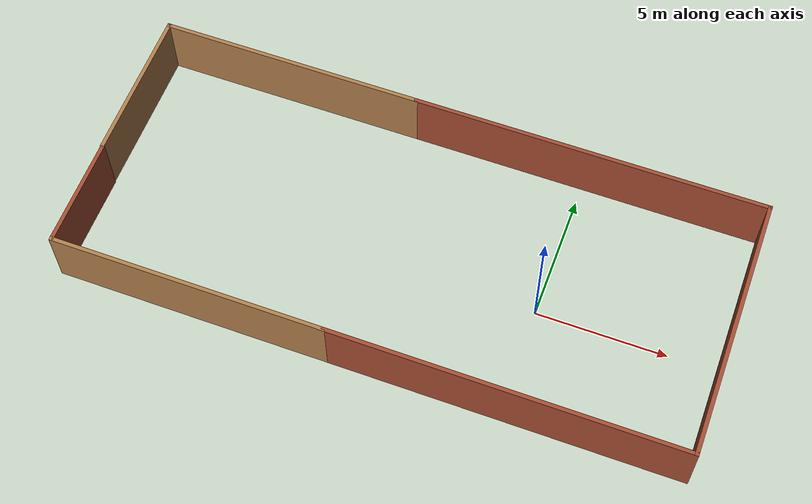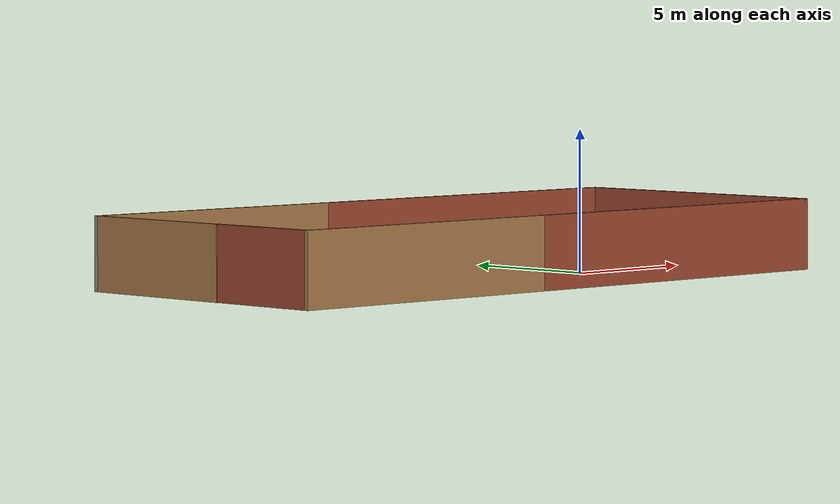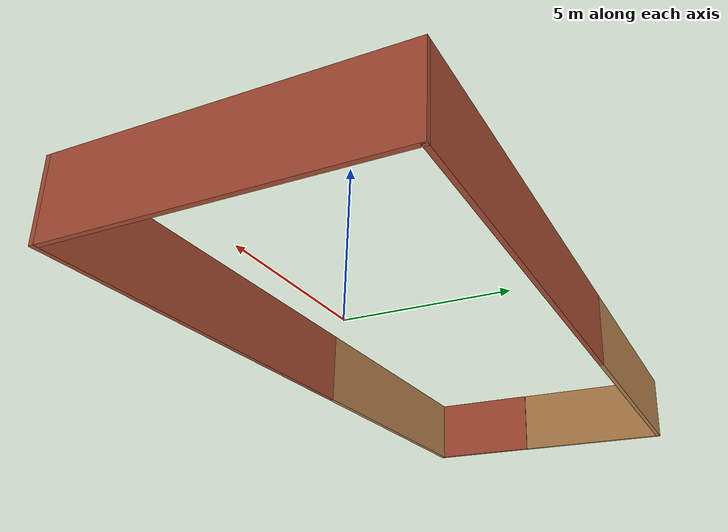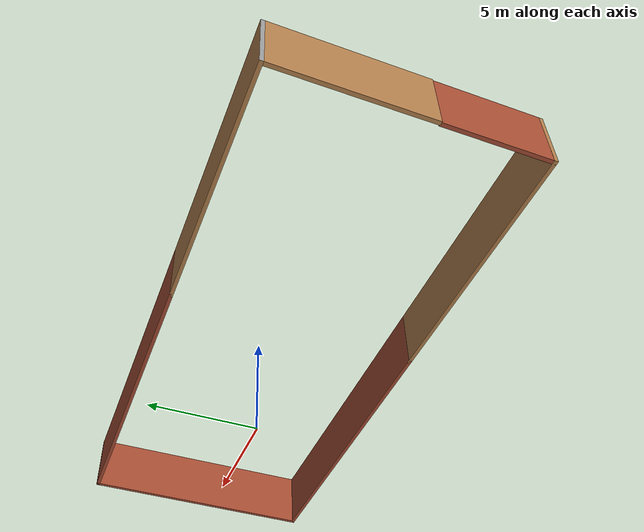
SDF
<?xml version='1.0'?>
<sdf version='1.7'>
  <model name='obstacleroom'>
    <pose>-5.03118 0.693138 0 0 -0 0</pose>
    <link name='Wall_0'>
      <collision name='Wall_0_Collision'>
        <geometry>
          <box>
            <size>13.75 0.15 2.5</size>
          </box>
        </geometry>
        <pose>0 0 1.25 0 -0 0</pose>
      </collision>
      <visual name='Wall_0_Visual'>
        <pose>0 0 1.25 0 -0 0</pose>
        <geometry>
          <box>
            <size>13.75 0.15 2.5</size>
          </box>
        </geometry>
        <material>
          <script>
            <uri>file://media/materials/scripts/gazebo.material</uri>
            <name>Gazebo/Bricks</name>
          </script>
          <ambient>1 1 1 1</ambient>
        </material>
        <meta>
          <layer>0</layer>
        </meta>
      </visual>
      <pose>5.08059 5.06314 0 0 -0 0</pose>
    </link>
    <link name='Wall_1'>
      <collision name='Wall_1_Collision'>
        <geometry>
          <box>
            <size>10.2763 0.15 2.5</size>
          </box>
        </geometry>
        <pose>0 0 1.25 0 -0 0</pose>
      </collision>
      <visual name='Wall_1_Visual'>
        <pose>0 0 1.25 0 -0 0</pose>
        <geometry>
          <box>
            <size>10.2763 0.15 2.5</size>
          </box>
        </geometry>
        <material>
          <script>
            <uri>file://media/materials/scripts/gazebo.material</uri>
            <name>Gazebo/Bricks</name>
          </script>
          <ambient>1 1 1 1</ambient>
        </material>
        <meta>
          <layer>0</layer>
        </meta>
      </visual>
      <pose>11.9112 -0 0 0 -0 -1.5708</pose>
    </link>
    <link name='Wall_2'>
      <collision name='Wall_2_Collision'>
        <geometry>
          <box>
            <size>13.5 0.15 2.5</size>
          </box>
        </geometry>
        <pose>0 0 1.25 0 -0 0</pose>
      </collision>
      <visual name='Wall_2_Visual'>
        <pose>0 0 1.25 0 -0 0</pose>
        <geometry>
          <box>
            <size>13.5 0.15 2.5</size>
          </box>
        </geometry>
        <material>
          <script>
            <uri>file://media/materials/scripts/gazebo.material</uri>
            <name>Gazebo/Bricks</name>
          </script>
          <ambient>1 1 1 1</ambient>
        </material>
        <meta>
          <layer>0</layer>
        </meta>
      </visual>
      <pose>5.23618 -5.06314 0 0 -0 3.14159</pose>
    </link>
    <link name='Wall_3'>
      <collision name='Wall_3_Collision'>
        <geometry>
          <box>
            <size>10.5955 0.15 2.5</size>
          </box>
        </geometry>
        <pose>0 0 1.25 0 -0 0</pose>
      </collision>
      <visual name='Wall_3_Visual'>
        <pose>0 0 1.25 0 -0 0</pose>
        <geometry>
          <box>
            <size>10.5955 0.15 2.5</size>
          </box>
        </geometry>
        <material>
          <script>
            <uri>file://media/materials/scripts/gazebo.material</uri>
            <name>Gazebo/Wood</name>
          </script>
          <ambient>1 1 1 1</ambient>
        </material>
        <meta>
          <layer>0</layer>
        </meta>
      </visual>
      <pose>-6.66121 -5.06314 0 0 -0 3.14159</pose>
    </link>
    <link name='Wall_4'>
      <collision name='Wall_4_Collision'>
        <geometry>
          <box>
            <size>4.25 0.15 2.5</size>
          </box>
        </geometry>
        <pose>0 0 1.25 0 -0 0</pose>
      </collision>
      <visual name='Wall_4_Visual'>
        <pose>0 0 1.25 0 -0 0</pose>
        <geometry>
          <box>
            <size>4.25 0.15 2.5</size>
          </box>
        </geometry>
        <material>
          <script>
            <uri>file://media/materials/scripts/gazebo.material</uri>
            <name>Gazebo/Bricks</name>
          </script>
          <ambient>1 1 1 1</ambient>
        </material>
        <meta>
          <layer>0</layer>
        </meta>
      </visual>
      <pose>-11.8836 -2.98255 0 0 -0 1.5708</pose>
    </link>
    <link name='Wall_6'>
      <collision name='Wall_6_Collision'>
        <geometry>
          <box>
            <size>10.3418 0.15 2.5</size>
          </box>
        </geometry>
        <pose>0 0 1.25 0 -0 0</pose>
      </collision>
      <visual name='Wall_6_Visual'>
        <pose>0 0 1.25 0 -0 0</pose>
        <geometry>
          <box>
            <size>10.3418 0.15 2.5</size>
          </box>
        </geometry>
        <material>
          <script>
            <uri>file://media/materials/scripts/gazebo.material</uri>
            <name>Gazebo/Wood</name>
          </script>
          <ambient>1 1 1 1</ambient>
        </material>
        <meta>
          <layer>0</layer>
        </meta>
      </visual>
      <pose>-6.81529 5.06314 0 0 -0 3.14159</pose>
    </link>
    <link name='Wall_7'>
      <collision name='Wall_7_Collision'>
        <geometry>
          <box>
            <size>0.15 0.15 2.5</size>
          </box>
        </geometry>
        <pose>0 0 1.25 0 -0 0</pose>
      </collision>
      <visual name='Wall_7_Visual'>
        <pose>0 0 1.25 0 -0 0</pose>
        <geometry>
          <box>
            <size>0.15 0.15 2.5</size>
          </box>
        </geometry>
        <material>
          <script>
            <uri>file://media/materials/scripts/gazebo.material</uri>
            <name>Gazebo/Grey</name>
          </script>
          <ambient>1 1 1 1</ambient>
        </material>
        <meta>
          <layer>0</layer>
        </meta>
      </visual>
      <pose>-11.9112 5.06314 0 0 -0 0</pose>
    </link>
    <link name='Wall_8'>
      <collision name='Wall_8_Collision'>
        <geometry>
          <box>
            <size>6 0.15 2.5</size>
          </box>
        </geometry>
        <pose>0 0 1.25 0 -0 0</pose>
      </collision>
      <visual name='Wall_8_Visual'>
        <pose>0 0 1.25 0 -0 0</pose>
        <geometry>
          <box>
            <size>6 0.15 2.5</size>
          </box>
        </geometry>
        <material>
          <script>
            <uri>file://media/materials/scripts/gazebo.material</uri>
            <name>Gazebo/Wood</name>
          </script>
          <ambient>1 1 1 1</ambient>
        </material>
        <meta>
          <layer>0</layer>
        </meta>
      </visual>
      <pose>-11.9112 2.10755 0 0 -0 -1.5708</pose>
    </link>
    <static>1</static>
  </model>
</sdf>
